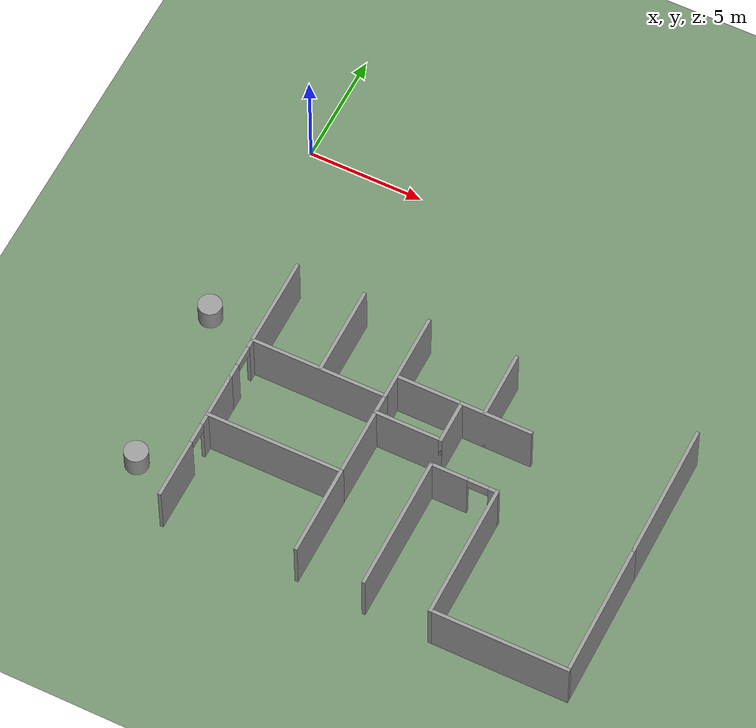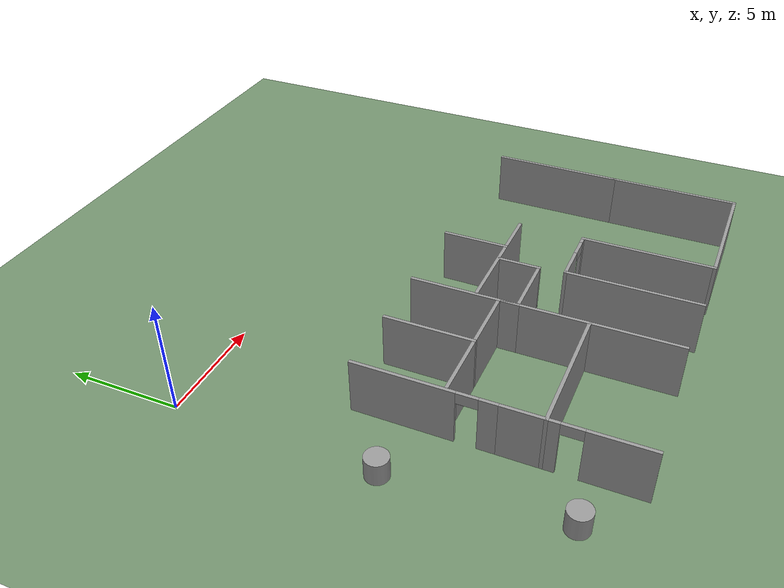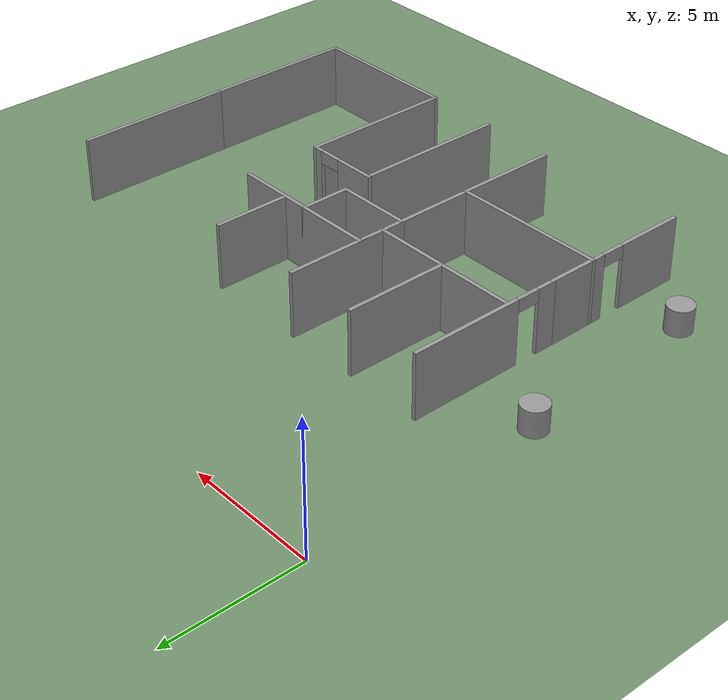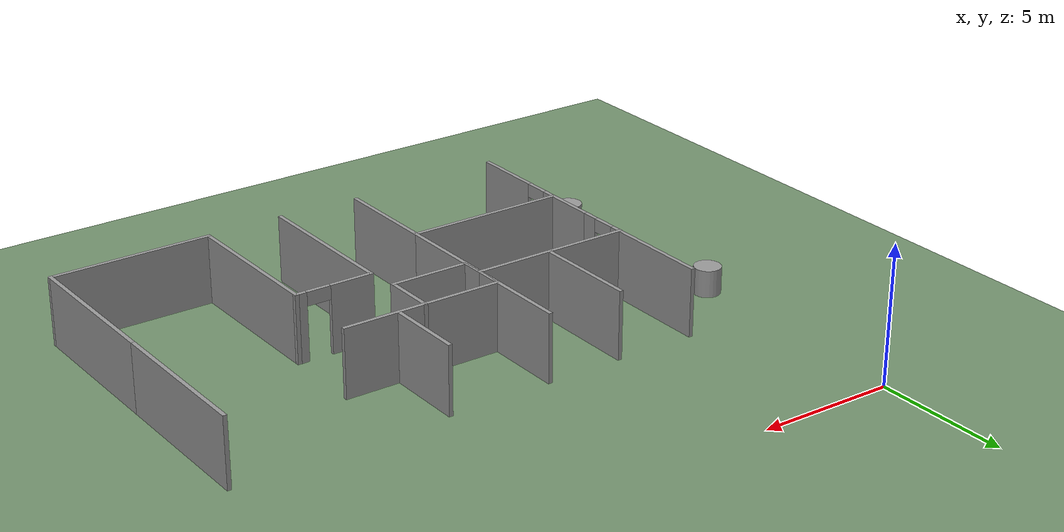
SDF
<sdf version="1.7">
 <world name="default">
  <model name="ground_plane">
   <static>1</static>
   <link name="link">
    <collision name="collision">
     <geometry><plane><normal>0 0 1</normal><size>600 600</size></plane></geometry>
     <surface>
      <contact><collide_bitmask>65535</collide_bitmask></contact>
      <friction><ode><mu>100</mu><mu2>50</mu2></ode></friction>
     </surface>
    </collision>
    <visual name="visual">
     <cast_shadows>0</cast_shadows>
     <geometry><plane><normal>0 0 1</normal><size>100 100</size></plane></geometry>
     <material><ambient>0.45 0.57 0.43 1</ambient><diffuse>0.45 0.57 0.43 1</diffuse></material>
    </visual>
   </link>
  </model>
  <model name="unit_cylinder_3">
   <pose>-0.035799 -8.83549 0.499992 -3e-06 2e-06 0</pose>
   <link name="link">
    <inertial>
     <mass>1</mass>
     <inertia><ixx>0.145833</ixx><ixy>0</ixy><ixz>0</ixz><iyy>0.145833</iyy><iyz>0</iyz><izz>0.125</izz></inertia>
    </inertial>
    <collision name="collision">
     <geometry><cylinder><radius>0.5</radius><length>1</length></cylinder></geometry>
    </collision>
    <visual name="visual">
     <geometry><cylinder><radius>0.5</radius><length>1</length></cylinder></geometry>
     <material>
      <script><name>Gazebo/Grey</name><uri>file://media/materials/scripts/gazebo.material</uri></script>
     </material>
    </visual>
   </link>
  </model>
  <model name="unit_cylinder_9">
   <pose>0.507557 -16.1833 0.499994 -3e-06 -2e-06 0</pose>
   <link name="link">
    <inertial>
     <mass>1</mass>
     <inertia><ixx>0.145833</ixx><ixy>0</ixy><ixz>0</ixz><iyy>0.145833</iyy><iyz>0</iyz><izz>0.125</izz></inertia>
    </inertial>
    <collision name="collision">
     <geometry><cylinder><radius>0.5</radius><length>1</length></cylinder></geometry>
    </collision>
    <visual name="visual">
     <geometry><cylinder><radius>0.5</radius><length>1</length></cylinder></geometry>
     <material>
      <script><name>Gazebo/Grey</name><uri>file://media/materials/scripts/gazebo.material</uri></script>
     </material>
    </visual>
   </link>
  </model>
  <model name="myhal_V3_2">
   <link name="Wall_330">
    <pose>20.475 -11.55 0 0 0 -1.5708</pose>
    <visual name="Wall_330_Visual">
     <pose>0 0 1.25 0 -0 0</pose>
     <geometry><box><size>6 0.15 2.5</size></box></geometry>
     <material>
      <script><uri>file://media/materials/scripts/gazebo.material</uri><name>Gazebo/Grey</name></script>
      <ambient>1 1 1 1</ambient>
      <shader type="pixel"/>
     </material>
     <meta><layer>0</layer></meta>
    </visual>
    <collision name="Wall_330_Collision">
     <pose>0 0 1.25 0 -0 0</pose>
     <geometry><box><size>6 0.15 2.5</size></box></geometry>
     <surface>
      <friction>
       <ode><mu>1</mu><mu2>1</mu2><fdir1>0 0 0</fdir1><slip1>0</slip1><slip2>0</slip2></ode>
       <torsional>
        <coefficient>1</coefficient>
        <patch_radius>0</patch_radius>
        <surface_radius>0</surface_radius>
        <use_patch_radius>1</use_patch_radius>
        <ode><slip>0</slip></ode>
       </torsional>
      </friction>
      <bounce><restitution_coefficient>0</restitution_coefficient><threshold>1e+06</threshold></bounce>
      <contact>
       <collide_without_contact>0</collide_without_contact>
       <collide_without_contact_bitmask>1</collide_without_contact_bitmask>
       <collide_bitmask>1</collide_bitmask>
       <ode>
        <soft_cfm>0</soft_cfm>
        <soft_erp>0.2</soft_erp>
        <kp>1e+13</kp>
        <kd>1</kd>
        <max_vel>0.01</max_vel>
        <min_depth>0</min_depth>
       </ode>
       <bullet>
        <split_impulse>1</split_impulse>
        <split_impulse_penetration_threshold>-0.01</split_impulse_penetration_threshold>
        <soft_cfm>0</soft_cfm>
        <soft_erp>0.2</soft_erp>
        <kp>1e+13</kp>
        <kd>1</kd>
       </bullet>
      </contact>
     </surface>
    </collision>
   </link>
   <link name="Wall_331">
    <pose>20.475 -17.4 0 0 0 -1.5708</pose>
    <visual name="Wall_331_Visual">
     <pose>0 0 1.25 0 -0 0</pose>
     <geometry><box><size>6 0.15 2.5</size></box></geometry>
     <material>
      <script><uri>file://media/materials/scripts/gazebo.material</uri><name>Gazebo/Grey</name></script>
      <ambient>1 1 1 1</ambient>
      <shader type="pixel"/>
     </material>
     <meta><layer>0</layer></meta>
    </visual>
    <collision name="Wall_331_Collision">
     <pose>0 0 1.25 0 -0 0</pose>
     <geometry><box><size>6 0.15 2.5</size></box></geometry>
     <surface>
      <friction>
       <ode><mu>1</mu><mu2>1</mu2><fdir1>0 0 0</fdir1><slip1>0</slip1><slip2>0</slip2></ode>
       <torsional>
        <coefficient>1</coefficient>
        <patch_radius>0</patch_radius>
        <surface_radius>0</surface_radius>
        <use_patch_radius>1</use_patch_radius>
        <ode><slip>0</slip></ode>
       </torsional>
      </friction>
      <bounce><restitution_coefficient>0</restitution_coefficient><threshold>1e+06</threshold></bounce>
      <contact>
       <collide_without_contact>0</collide_without_contact>
       <collide_without_contact_bitmask>1</collide_without_contact_bitmask>
       <collide_bitmask>1</collide_bitmask>
       <ode>
        <soft_cfm>0</soft_cfm>
        <soft_erp>0.2</soft_erp>
        <kp>1e+13</kp>
        <kd>1</kd>
        <max_vel>0.01</max_vel>
        <min_depth>0</min_depth>
       </ode>
       <bullet>
        <split_impulse>1</split_impulse>
        <split_impulse_penetration_threshold>-0.01</split_impulse_penetration_threshold>
        <soft_cfm>0</soft_cfm>
        <soft_erp>0.2</soft_erp>
        <kp>1e+13</kp>
        <kd>1</kd>
       </bullet>
      </contact>
     </surface>
    </collision>
   </link>
   <link name="Wall_482">
    <pose>2.925 -11.55 0 0 0 -1.5708</pose>
    <visual name="Wall_482_Visual_0">
     <pose>-0.826638 0 1.25 0 -0 0</pose>
     <geometry><box><size>4.34672 0.15 2.5</size></box></geometry>
     <material>
      <script><uri>file://media/materials/scripts/gazebo.material</uri><name>Gazebo/Grey</name></script>
      <ambient>1 1 1 1</ambient>
      <shader type="pixel"/>
     </material>
     <meta><layer>0</layer></meta>
    </visual>
    <visual name="Wall_482_Visual_1">
     <pose>2.62336 0 1.25 0 -0 0</pose>
     <geometry><box><size>0.753277 0.15 2.5</size></box></geometry>
     <material>
      <script><uri>file://media/materials/scripts/gazebo.material</uri><name>Gazebo/Grey</name></script>
      <ambient>1 1 1 1</ambient>
      <shader type="pixel"/>
     </material>
     <meta><layer>0</layer></meta>
    </visual>
    <visual name="Wall_482_Visual_2">
     <pose>1.79672 0 2.25 0 -0 0</pose>
     <geometry><box><size>0.9 0.15 0.5</size></box></geometry>
     <material>
      <script><uri>file://media/materials/scripts/gazebo.material</uri><name>Gazebo/Grey</name></script>
      <ambient>1 1 1 1</ambient>
      <shader type="pixel"/>
     </material>
     <meta><layer>0</layer></meta>
    </visual>
    <collision name="Wall_482_Collision_0">
     <pose>-0.826638 0 1.25 0 -0 0</pose>
     <geometry><box><size>4.34672 0.15 2.5</size></box></geometry>
     <surface>
      <friction>
       <ode><mu>1</mu><mu2>1</mu2><fdir1>0 0 0</fdir1><slip1>0</slip1><slip2>0</slip2></ode>
       <torsional>
        <coefficient>1</coefficient>
        <patch_radius>0</patch_radius>
        <surface_radius>0</surface_radius>
        <use_patch_radius>1</use_patch_radius>
        <ode><slip>0</slip></ode>
       </torsional>
      </friction>
      <bounce><restitution_coefficient>0</restitution_coefficient><threshold>1e+06</threshold></bounce>
      <contact>
       <collide_without_contact>0</collide_without_contact>
       <collide_without_contact_bitmask>1</collide_without_contact_bitmask>
       <collide_bitmask>1</collide_bitmask>
       <ode>
        <soft_cfm>0</soft_cfm>
        <soft_erp>0.2</soft_erp>
        <kp>1e+13</kp>
        <kd>1</kd>
        <max_vel>0.01</max_vel>
        <min_depth>0</min_depth>
       </ode>
       <bullet>
        <split_impulse>1</split_impulse>
        <split_impulse_penetration_threshold>-0.01</split_impulse_penetration_threshold>
        <soft_cfm>0</soft_cfm>
        <soft_erp>0.2</soft_erp>
        <kp>1e+13</kp>
        <kd>1</kd>
       </bullet>
      </contact>
     </surface>
    </collision>
    <collision name="Wall_482_Collision_1">
     <pose>2.62336 0 1.25 0 -0 0</pose>
     <geometry><box><size>0.753277 0.15 2.5</size></box></geometry>
     <surface>
      <friction>
       <ode><mu>1</mu><mu2>1</mu2><fdir1>0 0 0</fdir1><slip1>0</slip1><slip2>0</slip2></ode>
       <torsional>
        <coefficient>1</coefficient>
        <patch_radius>0</patch_radius>
        <surface_radius>0</surface_radius>
        <use_patch_radius>1</use_patch_radius>
        <ode><slip>0</slip></ode>
       </torsional>
      </friction>
      <bounce><restitution_coefficient>0</restitution_coefficient><threshold>1e+06</threshold></bounce>
      <contact>
       <collide_without_contact>0</collide_without_contact>
       <collide_without_contact_bitmask>1</collide_without_contact_bitmask>
       <collide_bitmask>1</collide_bitmask>
       <ode>
        <soft_cfm>0</soft_cfm>
        <soft_erp>0.2</soft_erp>
        <kp>1e+13</kp>
        <kd>1</kd>
        <max_vel>0.01</max_vel>
        <min_depth>0</min_depth>
       </ode>
       <bullet>
        <split_impulse>1</split_impulse>
        <split_impulse_penetration_threshold>-0.01</split_impulse_penetration_threshold>
        <soft_cfm>0</soft_cfm>
        <soft_erp>0.2</soft_erp>
        <kp>1e+13</kp>
        <kd>1</kd>
       </bullet>
      </contact>
     </surface>
    </collision>
    <collision name="Wall_482_Collision_2">
     <pose>1.79672 0 2.25 0 -0 0</pose>
     <geometry><box><size>0.9 0.15 0.5</size></box></geometry>
     <surface>
      <friction>
       <ode><mu>1</mu><mu2>1</mu2><fdir1>0 0 0</fdir1><slip1>0</slip1><slip2>0</slip2></ode>
       <torsional>
        <coefficient>1</coefficient>
        <patch_radius>0</patch_radius>
        <surface_radius>0</surface_radius>
        <use_patch_radius>1</use_patch_radius>
        <ode><slip>0</slip></ode>
       </torsional>
      </friction>
      <bounce><restitution_coefficient>0</restitution_coefficient><threshold>1e+06</threshold></bounce>
      <contact>
       <collide_without_contact>0</collide_without_contact>
       <collide_without_contact_bitmask>1</collide_without_contact_bitmask>
       <collide_bitmask>1</collide_bitmask>
       <ode>
        <soft_cfm>0</soft_cfm>
        <soft_erp>0.2</soft_erp>
        <kp>1e+13</kp>
        <kd>1</kd>
        <max_vel>0.01</max_vel>
        <min_depth>0</min_depth>
       </ode>
       <bullet>
        <split_impulse>1</split_impulse>
        <split_impulse_penetration_threshold>-0.01</split_impulse_penetration_threshold>
        <soft_cfm>0</soft_cfm>
        <soft_erp>0.2</soft_erp>
        <kp>1e+13</kp>
        <kd>1</kd>
       </bullet>
      </contact>
     </surface>
    </collision>
   </link>
   <link name="Wall_484">
    <pose>2.925 -17.4 0 0 0 -1.5708</pose>
    <visual name="Wall_484_Visual_0">
     <pose>-1.77874 0 1.25 0 -0 0</pose>
     <geometry><box><size>2.44252 0.15 2.5</size></box></geometry>
     <material>
      <script><uri>file://media/materials/scripts/gazebo.material</uri><name>Gazebo/Grey</name></script>
      <ambient>1 1 1 1</ambient>
      <shader type="pixel"/>
     </material>
     <meta><layer>0</layer></meta>
    </visual>
    <visual name="Wall_484_Visual_1">
     <pose>1.67126 0 1.25 0 -0 0</pose>
     <geometry><box><size>2.65748 0.15 2.5</size></box></geometry>
     <material>
      <script><uri>file://media/materials/scripts/gazebo.material</uri><name>Gazebo/Grey</name></script>
      <ambient>1 1 1 1</ambient>
      <shader type="pixel"/>
     </material>
     <meta><layer>0</layer></meta>
    </visual>
    <visual name="Wall_484_Visual_2">
     <pose>-0.107481 0 2.25 0 -0 0</pose>
     <geometry><box><size>0.9 0.15 0.5</size></box></geometry>
     <material>
      <script><uri>file://media/materials/scripts/gazebo.material</uri><name>Gazebo/Grey</name></script>
      <ambient>1 1 1 1</ambient>
      <shader type="pixel"/>
     </material>
     <meta><layer>0</layer></meta>
    </visual>
    <collision name="Wall_484_Collision_0">
     <pose>-1.77874 0 1.25 0 -0 0</pose>
     <geometry><box><size>2.44252 0.15 2.5</size></box></geometry>
     <surface>
      <friction>
       <ode><mu>1</mu><mu2>1</mu2><fdir1>0 0 0</fdir1><slip1>0</slip1><slip2>0</slip2></ode>
       <torsional>
        <coefficient>1</coefficient>
        <patch_radius>0</patch_radius>
        <surface_radius>0</surface_radius>
        <use_patch_radius>1</use_patch_radius>
        <ode><slip>0</slip></ode>
       </torsional>
      </friction>
      <bounce><restitution_coefficient>0</restitution_coefficient><threshold>1e+06</threshold></bounce>
      <contact>
       <collide_without_contact>0</collide_without_contact>
       <collide_without_contact_bitmask>1</collide_without_contact_bitmask>
       <collide_bitmask>1</collide_bitmask>
       <ode>
        <soft_cfm>0</soft_cfm>
        <soft_erp>0.2</soft_erp>
        <kp>1e+13</kp>
        <kd>1</kd>
        <max_vel>0.01</max_vel>
        <min_depth>0</min_depth>
       </ode>
       <bullet>
        <split_impulse>1</split_impulse>
        <split_impulse_penetration_threshold>-0.01</split_impulse_penetration_threshold>
        <soft_cfm>0</soft_cfm>
        <soft_erp>0.2</soft_erp>
        <kp>1e+13</kp>
        <kd>1</kd>
       </bullet>
      </contact>
     </surface>
    </collision>
    <collision name="Wall_484_Collision_1">
     <pose>1.67126 0 1.25 0 -0 0</pose>
     <geometry><box><size>2.65748 0.15 2.5</size></box></geometry>
     <surface>
      <friction>
       <ode><mu>1</mu><mu2>1</mu2><fdir1>0 0 0</fdir1><slip1>0</slip1><slip2>0</slip2></ode>
       <torsional>
        <coefficient>1</coefficient>
        <patch_radius>0</patch_radius>
        <surface_radius>0</surface_radius>
        <use_patch_radius>1</use_patch_radius>
        <ode><slip>0</slip></ode>
       </torsional>
      </friction>
      <bounce><restitution_coefficient>0</restitution_coefficient><threshold>1e+06</threshold></bounce>
      <contact>
       <collide_without_contact>0</collide_without_contact>
       <collide_without_contact_bitmask>1</collide_without_contact_bitmask>
       <collide_bitmask>1</collide_bitmask>
       <ode>
        <soft_cfm>0</soft_cfm>
        <soft_erp>0.2</soft_erp>
        <kp>1e+13</kp>
        <kd>1</kd>
        <max_vel>0.01</max_vel>
        <min_depth>0</min_depth>
       </ode>
       <bullet>
        <split_impulse>1</split_impulse>
        <split_impulse_penetration_threshold>-0.01</split_impulse_penetration_threshold>
        <soft_cfm>0</soft_cfm>
        <soft_erp>0.2</soft_erp>
        <kp>1e+13</kp>
        <kd>1</kd>
       </bullet>
      </contact>
     </surface>
    </collision>
    <collision name="Wall_484_Collision_2">
     <pose>-0.107481 0 2.25 0 -0 0</pose>
     <geometry><box><size>0.9 0.15 0.5</size></box></geometry>
     <surface>
      <friction>
       <ode><mu>1</mu><mu2>1</mu2><fdir1>0 0 0</fdir1><slip1>0</slip1><slip2>0</slip2></ode>
       <torsional>
        <coefficient>1</coefficient>
        <patch_radius>0</patch_radius>
        <surface_radius>0</surface_radius>
        <use_patch_radius>1</use_patch_radius>
        <ode><slip>0</slip></ode>
       </torsional>
      </friction>
      <bounce><restitution_coefficient>0</restitution_coefficient><threshold>1e+06</threshold></bounce>
      <contact>
       <collide_without_contact>0</collide_without_contact>
       <collide_without_contact_bitmask>1</collide_without_contact_bitmask>
       <collide_bitmask>1</collide_bitmask>
       <ode>
        <soft_cfm>0</soft_cfm>
        <soft_erp>0.2</soft_erp>
        <kp>1e+13</kp>
        <kd>1</kd>
        <max_vel>0.01</max_vel>
        <min_depth>0</min_depth>
       </ode>
       <bullet>
        <split_impulse>1</split_impulse>
        <split_impulse_penetration_threshold>-0.01</split_impulse_penetration_threshold>
        <soft_cfm>0</soft_cfm>
        <soft_erp>0.2</soft_erp>
        <kp>1e+13</kp>
        <kd>1</kd>
       </bullet>
      </contact>
     </surface>
    </collision>
   </link>
   <link name="Wall_487">
    <pose>8.775 -10.559 0 0 0 -1.5708</pose>
    <visual name="Wall_487_Visual">
     <pose>0 0 1.25 0 -0 0</pose>
     <geometry><box><size>4.01793 0.15 2.5</size></box></geometry>
     <material>
      <script><uri>file://media/materials/scripts/gazebo.material</uri><name>Gazebo/Grey</name></script>
      <ambient>1 1 1 1</ambient>
      <shader type="pixel"/>
     </material>
     <meta><layer>0</layer></meta>
    </visual>
    <collision name="Wall_487_Collision">
     <pose>0 0 1.25 0 -0 0</pose>
     <geometry><box><size>4.01793 0.15 2.5</size></box></geometry>
     <surface>
      <friction>
       <ode><mu>1</mu><mu2>1</mu2><fdir1>0 0 0</fdir1><slip1>0</slip1><slip2>0</slip2></ode>
       <torsional>
        <coefficient>1</coefficient>
        <patch_radius>0</patch_radius>
        <surface_radius>0</surface_radius>
        <use_patch_radius>1</use_patch_radius>
        <ode><slip>0</slip></ode>
       </torsional>
      </friction>
      <bounce><restitution_coefficient>0</restitution_coefficient><threshold>1e+06</threshold></bounce>
      <contact>
       <collide_without_contact>0</collide_without_contact>
       <collide_without_contact_bitmask>1</collide_without_contact_bitmask>
       <collide_bitmask>1</collide_bitmask>
       <ode>
        <soft_cfm>0</soft_cfm>
        <soft_erp>0.2</soft_erp>
        <kp>1e+13</kp>
        <kd>1</kd>
        <max_vel>0.01</max_vel>
        <min_depth>0</min_depth>
       </ode>
       <bullet>
        <split_impulse>1</split_impulse>
        <split_impulse_penetration_threshold>-0.01</split_impulse_penetration_threshold>
        <soft_cfm>0</soft_cfm>
        <soft_erp>0.2</soft_erp>
        <kp>1e+13</kp>
        <kd>1</kd>
       </bullet>
      </contact>
     </surface>
    </collision>
   </link>
   <link name="Wall_488">
    <pose>8.775 -14.409 0 0 0 -1.5708</pose>
    <visual name="Wall_488_Visual">
     <pose>0 0 1.25 0 -0 0</pose>
     <geometry><box><size>3.98206 0.15 2.5</size></box></geometry>
     <material>
      <script><uri>file://media/materials/scripts/gazebo.material</uri><name>Gazebo/Grey</name></script>
      <ambient>1 1 1 1</ambient>
      <shader type="pixel"/>
     </material>
     <meta><layer>0</layer></meta>
    </visual>
    <collision name="Wall_488_Collision">
     <pose>0 0 1.25 0 -0 0</pose>
     <geometry><box><size>3.98206 0.15 2.5</size></box></geometry>
     <surface>
      <friction>
       <ode><mu>1</mu><mu2>1</mu2><fdir1>0 0 0</fdir1><slip1>0</slip1><slip2>0</slip2></ode>
       <torsional>
        <coefficient>1</coefficient>
        <patch_radius>0</patch_radius>
        <surface_radius>0</surface_radius>
        <use_patch_radius>1</use_patch_radius>
        <ode><slip>0</slip></ode>
       </torsional>
      </friction>
      <bounce><restitution_coefficient>0</restitution_coefficient><threshold>1e+06</threshold></bounce>
      <contact>
       <collide_without_contact>0</collide_without_contact>
       <collide_without_contact_bitmask>1</collide_without_contact_bitmask>
       <collide_bitmask>1</collide_bitmask>
       <ode>
        <soft_cfm>0</soft_cfm>
        <soft_erp>0.2</soft_erp>
        <kp>1e+13</kp>
        <kd>1</kd>
        <max_vel>0.01</max_vel>
        <min_depth>0</min_depth>
       </ode>
       <bullet>
        <split_impulse>1</split_impulse>
        <split_impulse_penetration_threshold>-0.01</split_impulse_penetration_threshold>
        <soft_cfm>0</soft_cfm>
        <soft_erp>0.2</soft_erp>
        <kp>1e+13</kp>
        <kd>1</kd>
       </bullet>
      </contact>
     </surface>
    </collision>
   </link>
   <link name="Wall_489">
    <pose>8.775 -18.25 0 0 0 -1.5708</pose>
    <visual name="Wall_489_Visual">
     <pose>0 0 1.25 0 -0 0</pose>
     <geometry><box><size>4 0.15 2.5</size></box></geometry>
     <material>
      <script><uri>file://media/materials/scripts/gazebo.material</uri><name>Gazebo/Grey</name></script>
      <ambient>1 1 1 1</ambient>
      <shader type="pixel"/>
     </material>
     <meta><layer>0</layer></meta>
    </visual>
    <collision name="Wall_489_Collision">
     <pose>0 0 1.25 0 -0 0</pose>
     <geometry><box><size>4 0.15 2.5</size></box></geometry>
     <surface>
      <friction>
       <ode><mu>1</mu><mu2>1</mu2><fdir1>0 0 0</fdir1><slip1>0</slip1><slip2>0</slip2></ode>
       <torsional>
        <coefficient>1</coefficient>
        <patch_radius>0</patch_radius>
        <surface_radius>0</surface_radius>
        <use_patch_radius>1</use_patch_radius>
        <ode><slip>0</slip></ode>
       </torsional>
      </friction>
      <bounce><restitution_coefficient>0</restitution_coefficient><threshold>1e+06</threshold></bounce>
      <contact>
       <collide_without_contact>0</collide_without_contact>
       <collide_without_contact_bitmask>1</collide_without_contact_bitmask>
       <collide_bitmask>1</collide_bitmask>
       <ode>
        <soft_cfm>0</soft_cfm>
        <soft_erp>0.2</soft_erp>
        <kp>1e+13</kp>
        <kd>1</kd>
        <max_vel>0.01</max_vel>
        <min_depth>0</min_depth>
       </ode>
       <bullet>
        <split_impulse>1</split_impulse>
        <split_impulse_penetration_threshold>-0.01</split_impulse_penetration_threshold>
        <soft_cfm>0</soft_cfm>
        <soft_erp>0.2</soft_erp>
        <kp>1e+13</kp>
        <kd>1</kd>
       </bullet>
      </contact>
     </surface>
    </collision>
   </link>
   <link name="Wall_492">
    <pose>5.85 -12.4929 0 0 -0 3.14159</pose>
    <visual name="Wall_492_Visual">
     <pose>0 0 1.25 0 -0 0</pose>
     <geometry><box><size>6 0.15 2.5</size></box></geometry>
     <material>
      <script><uri>file://media/materials/scripts/gazebo.material</uri><name>Gazebo/Grey</name></script>
      <ambient>1 1 1 1</ambient>
      <shader type="pixel"/>
     </material>
     <meta><layer>0</layer></meta>
    </visual>
    <collision name="Wall_492_Collision">
     <pose>0 0 1.25 0 -0 0</pose>
     <geometry><box><size>6 0.15 2.5</size></box></geometry>
     <surface>
      <friction>
       <ode><mu>1</mu><mu2>1</mu2><fdir1>0 0 0</fdir1><slip1>0</slip1><slip2>0</slip2></ode>
       <torsional>
        <coefficient>1</coefficient>
        <patch_radius>0</patch_radius>
        <surface_radius>0</surface_radius>
        <use_patch_radius>1</use_patch_radius>
        <ode><slip>0</slip></ode>
       </torsional>
      </friction>
      <bounce><restitution_coefficient>0</restitution_coefficient><threshold>1e+06</threshold></bounce>
      <contact>
       <collide_without_contact>0</collide_without_contact>
       <collide_without_contact_bitmask>1</collide_without_contact_bitmask>
       <collide_bitmask>1</collide_bitmask>
       <ode>
        <soft_cfm>0</soft_cfm>
        <soft_erp>0.2</soft_erp>
        <kp>1e+13</kp>
        <kd>1</kd>
        <max_vel>0.01</max_vel>
        <min_depth>0</min_depth>
       </ode>
       <bullet>
        <split_impulse>1</split_impulse>
        <split_impulse_penetration_threshold>-0.01</split_impulse_penetration_threshold>
        <soft_cfm>0</soft_cfm>
        <soft_erp>0.2</soft_erp>
        <kp>1e+13</kp>
        <kd>1</kd>
       </bullet>
      </contact>
     </surface>
    </collision>
   </link>
   <link name="Wall_495">
    <pose>5.85 -16.325 0 0 -0 3.14159</pose>
    <visual name="Wall_495_Visual">
     <pose>0 0 1.25 0 -0 0</pose>
     <geometry><box><size>6 0.15 2.5</size></box></geometry>
     <material>
      <script><uri>file://media/materials/scripts/gazebo.material</uri><name>Gazebo/Grey</name></script>
      <ambient>1 1 1 1</ambient>
      <shader type="pixel"/>
     </material>
     <meta><layer>0</layer></meta>
    </visual>
    <collision name="Wall_495_Collision">
     <pose>0 0 1.25 0 -0 0</pose>
     <geometry><box><size>6 0.15 2.5</size></box></geometry>
     <surface>
      <friction>
       <ode><mu>1</mu><mu2>1</mu2><fdir1>0 0 0</fdir1><slip1>0</slip1><slip2>0</slip2></ode>
       <torsional>
        <coefficient>1</coefficient>
        <patch_radius>0</patch_radius>
        <surface_radius>0</surface_radius>
        <use_patch_radius>1</use_patch_radius>
        <ode><slip>0</slip></ode>
       </torsional>
      </friction>
      <bounce><restitution_coefficient>0</restitution_coefficient><threshold>1e+06</threshold></bounce>
      <contact>
       <collide_without_contact>0</collide_without_contact>
       <collide_without_contact_bitmask>1</collide_without_contact_bitmask>
       <collide_bitmask>1</collide_bitmask>
       <ode>
        <soft_cfm>0</soft_cfm>
        <soft_erp>0.2</soft_erp>
        <kp>1e+13</kp>
        <kd>1</kd>
        <max_vel>0.01</max_vel>
        <min_depth>0</min_depth>
       </ode>
       <bullet>
        <split_impulse>1</split_impulse>
        <split_impulse_penetration_threshold>-0.01</split_impulse_penetration_threshold>
        <soft_cfm>0</soft_cfm>
        <soft_erp>0.2</soft_erp>
        <kp>1e+13</kp>
        <kd>1</kd>
       </bullet>
      </contact>
     </surface>
    </collision>
   </link>
   <link name="Wall_521">
    <pose>17.55 -20.325 0 0 -0 3.14159</pose>
    <visual name="Wall_521_Visual">
     <pose>0 0 1.25 0 -0 0</pose>
     <geometry><box><size>6 0.15 2.5</size></box></geometry>
     <material>
      <script><uri>file://media/materials/scripts/gazebo.material</uri><name>Gazebo/Grey</name></script>
      <ambient>1 1 1 1</ambient>
      <shader type="pixel"/>
     </material>
     <meta><layer>0</layer></meta>
    </visual>
    <collision name="Wall_521_Collision">
     <pose>0 0 1.25 0 -0 0</pose>
     <geometry><box><size>6 0.15 2.5</size></box></geometry>
     <surface>
      <friction>
       <ode><mu>1</mu><mu2>1</mu2><fdir1>0 0 0</fdir1><slip1>0</slip1><slip2>0</slip2></ode>
       <torsional>
        <coefficient>1</coefficient>
        <patch_radius>0</patch_radius>
        <surface_radius>0</surface_radius>
        <use_patch_radius>1</use_patch_radius>
        <ode><slip>0</slip></ode>
       </torsional>
      </friction>
      <bounce><restitution_coefficient>0</restitution_coefficient><threshold>1e+06</threshold></bounce>
      <contact>
       <collide_without_contact>0</collide_without_contact>
       <collide_without_contact_bitmask>1</collide_without_contact_bitmask>
       <collide_bitmask>1</collide_bitmask>
       <ode>
        <soft_cfm>0</soft_cfm>
        <soft_erp>0.2</soft_erp>
        <kp>1e+13</kp>
        <kd>1</kd>
        <max_vel>0.01</max_vel>
        <min_depth>0</min_depth>
       </ode>
       <bullet>
        <split_impulse>1</split_impulse>
        <split_impulse_penetration_threshold>-0.01</split_impulse_penetration_threshold>
        <soft_cfm>0</soft_cfm>
        <soft_erp>0.2</soft_erp>
        <kp>1e+13</kp>
        <kd>1</kd>
       </bullet>
      </contact>
     </surface>
    </collision>
   </link>
   <link name="Wall_522">
    <pose>14.625 -17.4 0 0 -0 1.5708</pose>
    <visual name="Wall_522_Visual">
     <pose>0 0 1.25 0 -0 0</pose>
     <geometry><box><size>6 0.15 2.5</size></box></geometry>
     <material>
      <script><uri>file://media/materials/scripts/gazebo.material</uri><name>Gazebo/Grey</name></script>
      <ambient>1 1 1 1</ambient>
      <shader type="pixel"/>
     </material>
     <meta><layer>0</layer></meta>
    </visual>
    <collision name="Wall_522_Collision">
     <pose>0 0 1.25 0 -0 0</pose>
     <geometry><box><size>6 0.15 2.5</size></box></geometry>
     <surface>
      <friction>
       <ode><mu>1</mu><mu2>1</mu2><fdir1>0 0 0</fdir1><slip1>0</slip1><slip2>0</slip2></ode>
       <torsional>
        <coefficient>1</coefficient>
        <patch_radius>0</patch_radius>
        <surface_radius>0</surface_radius>
        <use_patch_radius>1</use_patch_radius>
        <ode><slip>0</slip></ode>
       </torsional>
      </friction>
      <bounce><restitution_coefficient>0</restitution_coefficient><threshold>1e+06</threshold></bounce>
      <contact>
       <collide_without_contact>0</collide_without_contact>
       <collide_without_contact_bitmask>1</collide_without_contact_bitmask>
       <collide_bitmask>1</collide_bitmask>
       <ode>
        <soft_cfm>0</soft_cfm>
        <soft_erp>0.2</soft_erp>
        <kp>1e+13</kp>
        <kd>1</kd>
        <max_vel>0.01</max_vel>
        <min_depth>0</min_depth>
       </ode>
       <bullet>
        <split_impulse>1</split_impulse>
        <split_impulse_penetration_threshold>-0.01</split_impulse_penetration_threshold>
        <soft_cfm>0</soft_cfm>
        <soft_erp>0.2</soft_erp>
        <kp>1e+13</kp>
        <kd>1</kd>
       </bullet>
      </contact>
     </surface>
    </collision>
   </link>
   <link name="Wall_523">
    <pose>13.2 -14.475 0 0 -0 3.14159</pose>
    <visual name="Wall_523_Visual_0">
     <pose>-1.27635 0 1.25 0 -0 0</pose>
     <geometry><box><size>0.447294 0.15 2.5</size></box></geometry>
     <material>
      <script><uri>file://media/materials/scripts/gazebo.material</uri><name>Gazebo/Grey</name></script>
      <ambient>1 1 1 1</ambient>
      <shader type="pixel"/>
     </material>
     <meta><layer>0</layer></meta>
    </visual>
    <visual name="Wall_523_Visual_1">
     <pose>0.673647 0 1.25 0 -0 0</pose>
     <geometry><box><size>1.65271 0.15 2.5</size></box></geometry>
     <material>
      <script><uri>file://media/materials/scripts/gazebo.material</uri><name>Gazebo/Grey</name></script>
      <ambient>1 1 1 1</ambient>
      <shader type="pixel"/>
     </material>
     <meta><layer>0</layer></meta>
    </visual>
    <visual name="Wall_523_Visual_2">
     <pose>-0.602706 0 2.25 0 -0 0</pose>
     <geometry><box><size>0.9 0.15 0.5</size></box></geometry>
     <material>
      <script><uri>file://media/materials/scripts/gazebo.material</uri><name>Gazebo/Grey</name></script>
      <ambient>1 1 1 1</ambient>
      <shader type="pixel"/>
     </material>
     <meta><layer>0</layer></meta>
    </visual>
    <collision name="Wall_523_Collision_0">
     <pose>-1.27635 0 1.25 0 -0 0</pose>
     <geometry><box><size>0.447294 0.15 2.5</size></box></geometry>
     <surface>
      <friction>
       <ode><mu>1</mu><mu2>1</mu2><fdir1>0 0 0</fdir1><slip1>0</slip1><slip2>0</slip2></ode>
       <torsional>
        <coefficient>1</coefficient>
        <patch_radius>0</patch_radius>
        <surface_radius>0</surface_radius>
        <use_patch_radius>1</use_patch_radius>
        <ode><slip>0</slip></ode>
       </torsional>
      </friction>
      <bounce><restitution_coefficient>0</restitution_coefficient><threshold>1e+06</threshold></bounce>
      <contact>
       <collide_without_contact>0</collide_without_contact>
       <collide_without_contact_bitmask>1</collide_without_contact_bitmask>
       <collide_bitmask>1</collide_bitmask>
       <ode>
        <soft_cfm>0</soft_cfm>
        <soft_erp>0.2</soft_erp>
        <kp>1e+13</kp>
        <kd>1</kd>
        <max_vel>0.01</max_vel>
        <min_depth>0</min_depth>
       </ode>
       <bullet>
        <split_impulse>1</split_impulse>
        <split_impulse_penetration_threshold>-0.01</split_impulse_penetration_threshold>
        <soft_cfm>0</soft_cfm>
        <soft_erp>0.2</soft_erp>
        <kp>1e+13</kp>
        <kd>1</kd>
       </bullet>
      </contact>
     </surface>
    </collision>
    <collision name="Wall_523_Collision_1">
     <pose>0.673647 0 1.25 0 -0 0</pose>
     <geometry><box><size>1.65271 0.15 2.5</size></box></geometry>
     <surface>
      <friction>
       <ode><mu>1</mu><mu2>1</mu2><fdir1>0 0 0</fdir1><slip1>0</slip1><slip2>0</slip2></ode>
       <torsional>
        <coefficient>1</coefficient>
        <patch_radius>0</patch_radius>
        <surface_radius>0</surface_radius>
        <use_patch_radius>1</use_patch_radius>
        <ode><slip>0</slip></ode>
       </torsional>
      </friction>
      <bounce><restitution_coefficient>0</restitution_coefficient><threshold>1e+06</threshold></bounce>
      <contact>
       <collide_without_contact>0</collide_without_contact>
       <collide_without_contact_bitmask>1</collide_without_contact_bitmask>
       <collide_bitmask>1</collide_bitmask>
       <ode>
        <soft_cfm>0</soft_cfm>
        <soft_erp>0.2</soft_erp>
        <kp>1e+13</kp>
        <kd>1</kd>
        <max_vel>0.01</max_vel>
        <min_depth>0</min_depth>
       </ode>
       <bullet>
        <split_impulse>1</split_impulse>
        <split_impulse_penetration_threshold>-0.01</split_impulse_penetration_threshold>
        <soft_cfm>0</soft_cfm>
        <soft_erp>0.2</soft_erp>
        <kp>1e+13</kp>
        <kd>1</kd>
       </bullet>
      </contact>
     </surface>
    </collision>
    <collision name="Wall_523_Collision_2">
     <pose>-0.602706 0 2.25 0 -0 0</pose>
     <geometry><box><size>0.9 0.15 0.5</size></box></geometry>
     <surface>
      <friction>
       <ode><mu>1</mu><mu2>1</mu2><fdir1>0 0 0</fdir1><slip1>0</slip1><slip2>0</slip2></ode>
       <torsional>
        <coefficient>1</coefficient>
        <patch_radius>0</patch_radius>
        <surface_radius>0</surface_radius>
        <use_patch_radius>1</use_patch_radius>
        <ode><slip>0</slip></ode>
       </torsional>
      </friction>
      <bounce><restitution_coefficient>0</restitution_coefficient><threshold>1e+06</threshold></bounce>
      <contact>
       <collide_without_contact>0</collide_without_contact>
       <collide_without_contact_bitmask>1</collide_without_contact_bitmask>
       <collide_bitmask>1</collide_bitmask>
       <ode>
        <soft_cfm>0</soft_cfm>
        <soft_erp>0.2</soft_erp>
        <kp>1e+13</kp>
        <kd>1</kd>
        <max_vel>0.01</max_vel>
        <min_depth>0</min_depth>
       </ode>
       <bullet>
        <split_impulse>1</split_impulse>
        <split_impulse_penetration_threshold>-0.01</split_impulse_penetration_threshold>
        <soft_cfm>0</soft_cfm>
        <soft_erp>0.2</soft_erp>
        <kp>1e+13</kp>
        <kd>1</kd>
       </bullet>
      </contact>
     </surface>
    </collision>
   </link>
   <link name="Wall_524">
    <pose>11.775 -17.4 0 0 0 -1.5708</pose>
    <visual name="Wall_524_Visual">
     <pose>0 0 1.25 0 -0 0</pose>
     <geometry><box><size>6 0.15 2.5</size></box></geometry>
     <material>
      <script><uri>file://media/materials/scripts/gazebo.material</uri><name>Gazebo/Grey</name></script>
      <ambient>1 1 1 1</ambient>
      <shader type="pixel"/>
     </material>
     <meta><layer>0</layer></meta>
    </visual>
    <collision name="Wall_524_Collision">
     <pose>0 0 1.25 0 -0 0</pose>
     <geometry><box><size>6 0.15 2.5</size></box></geometry>
     <surface>
      <friction>
       <ode><mu>1</mu><mu2>1</mu2><fdir1>0 0 0</fdir1><slip1>0</slip1><slip2>0</slip2></ode>
       <torsional>
        <coefficient>1</coefficient>
        <patch_radius>0</patch_radius>
        <surface_radius>0</surface_radius>
        <use_patch_radius>1</use_patch_radius>
        <ode><slip>0</slip></ode>
       </torsional>
      </friction>
      <bounce><restitution_coefficient>0</restitution_coefficient><threshold>1e+06</threshold></bounce>
      <contact>
       <collide_without_contact>0</collide_without_contact>
       <collide_without_contact_bitmask>1</collide_without_contact_bitmask>
       <collide_bitmask>1</collide_bitmask>
       <ode>
        <soft_cfm>0</soft_cfm>
        <soft_erp>0.2</soft_erp>
        <kp>1e+13</kp>
        <kd>1</kd>
        <max_vel>0.01</max_vel>
        <min_depth>0</min_depth>
       </ode>
       <bullet>
        <split_impulse>1</split_impulse>
        <split_impulse_penetration_threshold>-0.01</split_impulse_penetration_threshold>
        <soft_cfm>0</soft_cfm>
        <soft_erp>0.2</soft_erp>
        <kp>1e+13</kp>
        <kd>1</kd>
       </bullet>
      </contact>
     </surface>
    </collision>
   </link>
   <link name="Wall_527">
    <pose>11.7 -11.475 0 0 -0 3.14159</pose>
    <visual name="Wall_527_Visual">
     <pose>0 0 1.25 0 -0 0</pose>
     <geometry><box><size>6 0.15 2.5</size></box></geometry>
     <material>
      <script><uri>file://media/materials/scripts/gazebo.material</uri><name>Gazebo/Grey</name></script>
      <ambient>1 1 1 1</ambient>
      <shader type="pixel"/>
     </material>
     <meta><layer>0</layer></meta>
    </visual>
    <collision name="Wall_527_Collision">
     <pose>0 0 1.25 0 -0 0</pose>
     <geometry><box><size>6 0.15 2.5</size></box></geometry>
     <surface>
      <friction>
       <ode><mu>1</mu><mu2>1</mu2><fdir1>0 0 0</fdir1><slip1>0</slip1><slip2>0</slip2></ode>
       <torsional>
        <coefficient>1</coefficient>
        <patch_radius>0</patch_radius>
        <surface_radius>0</surface_radius>
        <use_patch_radius>1</use_patch_radius>
        <ode><slip>0</slip></ode>
       </torsional>
      </friction>
      <bounce><restitution_coefficient>0</restitution_coefficient><threshold>1e+06</threshold></bounce>
      <contact>
       <collide_without_contact>0</collide_without_contact>
       <collide_without_contact_bitmask>1</collide_without_contact_bitmask>
       <collide_bitmask>1</collide_bitmask>
       <ode>
        <soft_cfm>0</soft_cfm>
        <soft_erp>0.2</soft_erp>
        <kp>1e+13</kp>
        <kd>1</kd>
        <max_vel>0.01</max_vel>
        <min_depth>0</min_depth>
       </ode>
       <bullet>
        <split_impulse>1</split_impulse>
        <split_impulse_penetration_threshold>-0.01</split_impulse_penetration_threshold>
        <soft_cfm>0</soft_cfm>
        <soft_erp>0.2</soft_erp>
        <kp>1e+13</kp>
        <kd>1</kd>
       </bullet>
      </contact>
     </surface>
    </collision>
   </link>
   <link name="Wall_530">
    <pose>12.625 -10.05 0 0 -0 1.5708</pose>
    <visual name="Wall_530_Visual">
     <pose>0 0 1.25 0 -0 0</pose>
     <geometry><box><size>3 0.15 2.5</size></box></geometry>
     <material>
      <script><uri>file://media/materials/scripts/gazebo.material</uri><name>Gazebo/Grey</name></script>
      <ambient>1 1 1 1</ambient>
      <shader type="pixel"/>
     </material>
     <meta><layer>0</layer></meta>
    </visual>
    <collision name="Wall_530_Collision">
     <pose>0 0 1.25 0 -0 0</pose>
     <geometry><box><size>3 0.15 2.5</size></box></geometry>
     <surface>
      <friction>
       <ode><mu>1</mu><mu2>1</mu2><fdir1>0 0 0</fdir1><slip1>0</slip1><slip2>0</slip2></ode>
       <torsional>
        <coefficient>1</coefficient>
        <patch_radius>0</patch_radius>
        <surface_radius>0</surface_radius>
        <use_patch_radius>1</use_patch_radius>
        <ode><slip>0</slip></ode>
       </torsional>
      </friction>
      <bounce><restitution_coefficient>0</restitution_coefficient><threshold>1e+06</threshold></bounce>
      <contact>
       <collide_without_contact>0</collide_without_contact>
       <collide_without_contact_bitmask>1</collide_without_contact_bitmask>
       <collide_bitmask>1</collide_bitmask>
       <ode>
        <soft_cfm>0</soft_cfm>
        <soft_erp>0.2</soft_erp>
        <kp>1e+13</kp>
        <kd>1</kd>
        <max_vel>0.01</max_vel>
        <min_depth>0</min_depth>
       </ode>
       <bullet>
        <split_impulse>1</split_impulse>
        <split_impulse_penetration_threshold>-0.01</split_impulse_penetration_threshold>
        <soft_cfm>0</soft_cfm>
        <soft_erp>0.2</soft_erp>
        <kp>1e+13</kp>
        <kd>1</kd>
       </bullet>
      </contact>
     </surface>
    </collision>
   </link>
   <link name="Wall_532">
    <pose>8.775 -12.4 0 0 0 -1.5708</pose>
    <visual name="Wall_532_Visual">
     <pose>0 0 1.25 0 -0 0</pose>
     <geometry><box><size>2 0.15 2.5</size></box></geometry>
     <material>
      <script><uri>file://media/materials/scripts/gazebo.material</uri><name>Gazebo/Grey</name></script>
      <ambient>1 1 1 1</ambient>
      <shader type="pixel"/>
     </material>
     <meta><layer>0</layer></meta>
    </visual>
    <collision name="Wall_532_Collision">
     <pose>0 0 1.25 0 -0 0</pose>
     <geometry><box><size>2 0.15 2.5</size></box></geometry>
     <surface>
      <friction>
       <ode><mu>1</mu><mu2>1</mu2><fdir1>0 0 0</fdir1><slip1>0</slip1><slip2>0</slip2></ode>
       <torsional>
        <coefficient>1</coefficient>
        <patch_radius>0</patch_radius>
        <surface_radius>0</surface_radius>
        <use_patch_radius>1</use_patch_radius>
        <ode><slip>0</slip></ode>
       </torsional>
      </friction>
      <bounce><restitution_coefficient>0</restitution_coefficient><threshold>1e+06</threshold></bounce>
      <contact>
       <collide_without_contact>0</collide_without_contact>
       <collide_without_contact_bitmask>1</collide_without_contact_bitmask>
       <collide_bitmask>1</collide_bitmask>
       <ode>
        <soft_cfm>0</soft_cfm>
        <soft_erp>0.2</soft_erp>
        <kp>1e+13</kp>
        <kd>1</kd>
        <max_vel>0.01</max_vel>
        <min_depth>0</min_depth>
       </ode>
       <bullet>
        <split_impulse>1</split_impulse>
        <split_impulse_penetration_threshold>-0.01</split_impulse_penetration_threshold>
        <soft_cfm>0</soft_cfm>
        <soft_erp>0.2</soft_erp>
        <kp>1e+13</kp>
        <kd>1</kd>
       </bullet>
      </contact>
     </surface>
    </collision>
   </link>
   <link name="Wall_533">
    <pose>10.2 -13.325 0 0 -0 0</pose>
    <visual name="Wall_533_Visual">
     <pose>0 0 1.25 0 -0 0</pose>
     <geometry><box><size>3 0.15 2.5</size></box></geometry>
     <material>
      <script><uri>file://media/materials/scripts/gazebo.material</uri><name>Gazebo/Grey</name></script>
      <ambient>1 1 1 1</ambient>
      <shader type="pixel"/>
     </material>
     <meta><layer>0</layer></meta>
    </visual>
    <collision name="Wall_533_Collision">
     <pose>0 0 1.25 0 -0 0</pose>
     <geometry><box><size>3 0.15 2.5</size></box></geometry>
     <surface>
      <friction>
       <ode><mu>1</mu><mu2>1</mu2><fdir1>0 0 0</fdir1><slip1>0</slip1><slip2>0</slip2></ode>
       <torsional>
        <coefficient>1</coefficient>
        <patch_radius>0</patch_radius>
        <surface_radius>0</surface_radius>
        <use_patch_radius>1</use_patch_radius>
        <ode><slip>0</slip></ode>
       </torsional>
      </friction>
      <bounce><restitution_coefficient>0</restitution_coefficient><threshold>1e+06</threshold></bounce>
      <contact>
       <collide_without_contact>0</collide_without_contact>
       <collide_without_contact_bitmask>1</collide_without_contact_bitmask>
       <collide_bitmask>1</collide_bitmask>
       <ode>
        <soft_cfm>0</soft_cfm>
        <soft_erp>0.2</soft_erp>
        <kp>1e+13</kp>
        <kd>1</kd>
        <max_vel>0.01</max_vel>
        <min_depth>0</min_depth>
       </ode>
       <bullet>
        <split_impulse>1</split_impulse>
        <split_impulse_penetration_threshold>-0.01</split_impulse_penetration_threshold>
        <soft_cfm>0</soft_cfm>
        <soft_erp>0.2</soft_erp>
        <kp>1e+13</kp>
        <kd>1</kd>
       </bullet>
      </contact>
     </surface>
    </collision>
   </link>
   <link name="Wall_534">
    <pose>11.625 -12.4 0 0 -0 1.5708</pose>
    <visual name="Wall_534_Visual">
     <pose>0 0 1.25 0 -0 0</pose>
     <geometry><box><size>2 0.15 2.5</size></box></geometry>
     <material>
      <script><uri>file://media/materials/scripts/gazebo.material</uri><name>Gazebo/Grey</name></script>
      <ambient>1 1 1 1</ambient>
      <shader type="pixel"/>
     </material>
     <meta><layer>0</layer></meta>
    </visual>
    <collision name="Wall_534_Collision">
     <pose>0 0 1.25 0 -0 0</pose>
     <geometry><box><size>2 0.15 2.5</size></box></geometry>
     <surface>
      <friction>
       <ode><mu>1</mu><mu2>1</mu2><fdir1>0 0 0</fdir1><slip1>0</slip1><slip2>0</slip2></ode>
       <torsional>
        <coefficient>1</coefficient>
        <patch_radius>0</patch_radius>
        <surface_radius>0</surface_radius>
        <use_patch_radius>1</use_patch_radius>
        <ode><slip>0</slip></ode>
       </torsional>
      </friction>
      <bounce><restitution_coefficient>0</restitution_coefficient><threshold>1e+06</threshold></bounce>
      <contact>
       <collide_without_contact>0</collide_without_contact>
       <collide_without_contact_bitmask>1</collide_without_contact_bitmask>
       <collide_bitmask>1</collide_bitmask>
       <ode>
        <soft_cfm>0</soft_cfm>
        <soft_erp>0.2</soft_erp>
        <kp>1e+13</kp>
        <kd>1</kd>
        <max_vel>0.01</max_vel>
        <min_depth>0</min_depth>
       </ode>
       <bullet>
        <split_impulse>1</split_impulse>
        <split_impulse_penetration_threshold>-0.01</split_impulse_penetration_threshold>
        <soft_cfm>0</soft_cfm>
        <soft_erp>0.2</soft_erp>
        <kp>1e+13</kp>
        <kd>1</kd>
       </bullet>
      </contact>
     </surface>
    </collision>
   </link>
   <link name="Wall_581">
    <pose>5.925 -10.5679 0 0 -0 1.5708</pose>
    <visual name="Wall_581_Visual">
     <pose>0 0 1.25 0 -0 0</pose>
     <geometry><box><size>4 0.15 2.5</size></box></geometry>
     <material>
      <script><uri>file://media/materials/scripts/gazebo.material</uri><name>Gazebo/Grey</name></script>
      <ambient>1 1 1 1</ambient>
      <shader type="pixel"/>
     </material>
     <meta><layer>0</layer></meta>
    </visual>
    <collision name="Wall_581_Collision">
     <pose>0 0 1.25 0 -0 0</pose>
     <geometry><box><size>4 0.15 2.5</size></box></geometry>
     <surface>
      <friction>
       <ode><mu>1</mu><mu2>1</mu2><fdir1>0 0 0</fdir1><slip1>0</slip1><slip2>0</slip2></ode>
       <torsional>
        <coefficient>1</coefficient>
        <patch_radius>0</patch_radius>
        <surface_radius>0</surface_radius>
        <use_patch_radius>1</use_patch_radius>
        <ode><slip>0</slip></ode>
       </torsional>
      </friction>
      <bounce><restitution_coefficient>0</restitution_coefficient><threshold>1e+06</threshold></bounce>
      <contact>
       <collide_without_contact>0</collide_without_contact>
       <collide_without_contact_bitmask>1</collide_without_contact_bitmask>
       <collide_bitmask>1</collide_bitmask>
       <ode>
        <soft_cfm>0</soft_cfm>
        <soft_erp>0.2</soft_erp>
        <kp>1e+13</kp>
        <kd>1</kd>
        <max_vel>0.01</max_vel>
        <min_depth>0</min_depth>
       </ode>
       <bullet>
        <split_impulse>1</split_impulse>
        <split_impulse_penetration_threshold>-0.01</split_impulse_penetration_threshold>
        <soft_cfm>0</soft_cfm>
        <soft_erp>0.2</soft_erp>
        <kp>1e+13</kp>
        <kd>1</kd>
       </bullet>
      </contact>
     </surface>
    </collision>
   </link>
   <static>1</static>
   <pose>-0.2201 2.1339 0 0 -0 0</pose>
  </model>
 </world>
</sdf>
